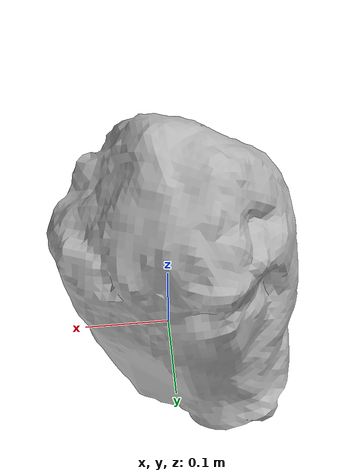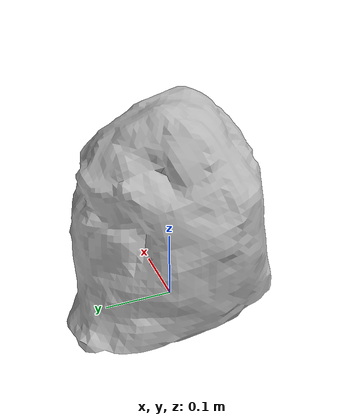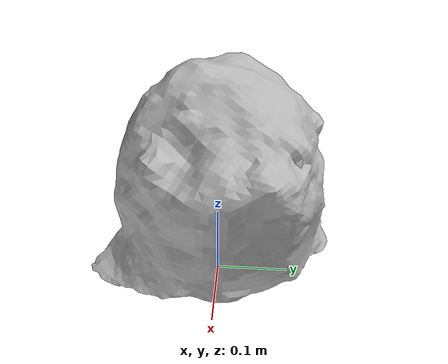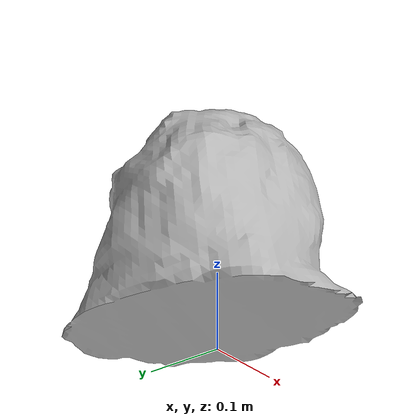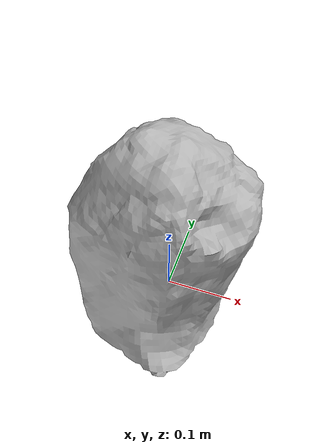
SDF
<?xml version="1.0" ?>
<sdf version="1.5">
  <model name="clear_trash_bag">
    <static>true</static>
    <link name="link">
      <collision name="surface">
        <pose>0 0 0 0 0 0</pose>
        <geometry>
          <mesh>
          <uri>model://trash_bag_clear/meshes/trash.dae</uri>
          <scale>0.5 0.5 0.5</scale>
          </mesh>
        </geometry>
      </collision>

      <visual name="visual">
        <geometry>
          <mesh>
            <uri>model://trash_bag_clear/meshes/trash.dae</uri>
            <scale>0.5 0.5 0.5</scale>
          </mesh>
        </geometry>
      </visual>
    </link>
  </model>
</sdf>
